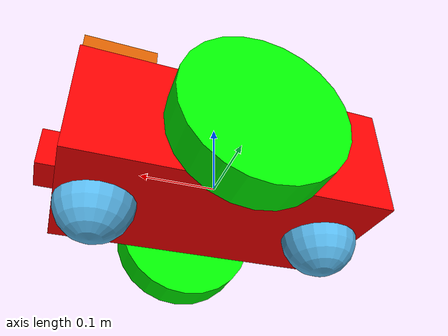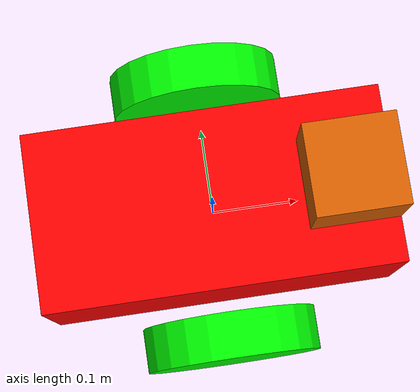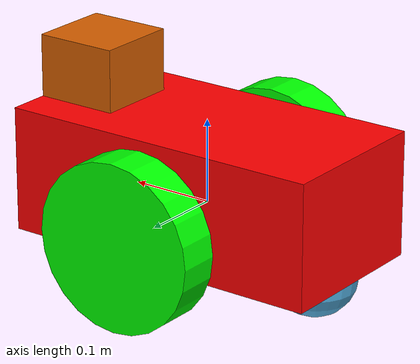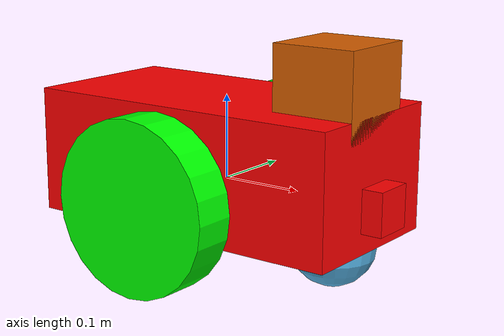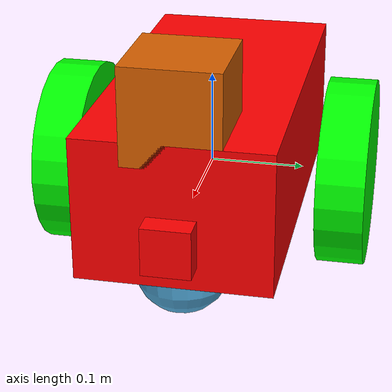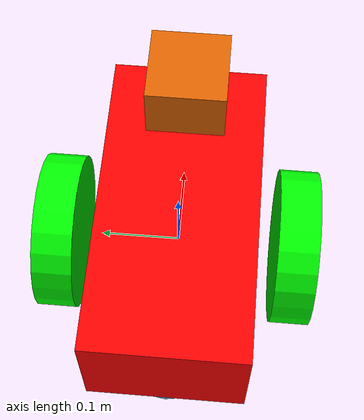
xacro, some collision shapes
<?xml version='1.0'?>

<robot name="udacity_bot" xmlns:xacro="http://www.ros.org/wiki/xacro">

  <xacro:include filename="$(find udacity_bot)/urdf/my_bot.gazebo" />

  <material name="red">
    <color rgba="1.0 0.0 0.0 1.0" />
  </material>

  <material name="green">
    <color rgba="0.0 1.0 0.0 1.0" />
  </material>

  <material name="blue">
    <color rgba="0.0 0.0 1.0 1.0" />
  </material>

  <link name="robot_footprint"></link>

  <joint name="robot_footprint_joint" type="fixed">
    <origin xyz="0 0 0" rpy="0 0 0" />
    <parent link="robot_footprint"/>
    <child link="chassis" />
  </joint>

  <link name='chassis'>
    <pose>0 0 0.1 0 0 0</pose>

    <inertial>
      <mass value="15.0"/>
      <origin xyz="0.0 0 0" rpy=" 0 0 0"/>
      <inertia
          ixx="0.1" ixy="0" ixz="0"
          iyy="0.1" iyz="0"
          izz="0.1"
      />
    </inertial>

    <collision name='collision'>
      <origin xyz="0 0 0.025" rpy=" 0 0 0"/>
      <geometry>
        <box size=".4 .2 .15"/>
      </geometry>
    </collision>

    <visual name='chassis_visual'>
      <origin xyz="0 0 0.025" rpy=" 0 0 0"/>
      <geometry>
        <box size=".4 .2 .15"/>
      </geometry>
      <material name="red" />
    </visual>

    <collision name='back_caster_collision'>
      <origin xyz="-0.15 0 -0.05" rpy=" 0 0 0"/>
      <geometry>
        <sphere radius="0.0499"/>
      </geometry>
    </collision>

    <visual name='back_caster_visual'>
      <origin xyz="-0.15 0 -0.05" rpy=" 0 0 0"/>
      <geometry>
        <sphere radius="0.05"/>
      </geometry>
    </visual>

    <collision name='front_caster_collision'>
      <origin xyz="0.15 0 -0.05" rpy=" 0 0 0"/>
      <geometry>
        <sphere radius="0.0499"/>
      </geometry>
    </collision>

    <visual name='front_caster_visual'>
      <origin xyz="0.15 0 -0.05" rpy=" 0 0 0"/>
      <geometry>
        <sphere radius="0.05"/>
      </geometry>
    </visual>

  </link>

  <!-- LEFT WHEEL -->
  <joint type="continuous" name="left_wheel_hinge">
    <origin xyz="0 0.15 0" rpy="0 0 0"/>
    <child link="left_wheel"/>
    <parent link="chassis"/>
    <axis xyz="0 1 0" rpy="0 0 0"/>
    <limit effort="10000" velocity="1000"/>
    <dynamics damping="1.0" friction="1.0"/>
  </joint>

  <link name='left_wheel'>
    <pose>0 0 0 0 1.5707 1.5707</pose>
    <inertial>
      <mass value="5.0"/>
      <origin xyz="0 0 0" rpy="0 1.5707 1.5707" />
      <inertia
          ixx="0.1" ixy="0" ixz="0"
          iyy="0.1" iyz="0"
          izz="0.1"
      />
    </inertial>

    <collision>
      <origin xyz="0 0 0" rpy="0 1.5707 1.5707" />
      <geometry>
        <cylinder radius="0.1" length="0.05" />
      </geometry>
    </collision>

    <visual>
      <origin xyz="0 0 0" rpy="0 1.5707 1.5707" />
      <geometry>
        <cylinder radius="0.1" length="0.05" />
      </geometry>
      <material name="green" />
    </visual>
  </link>

  <!-- RIGHT WHEEL -->
  <joint type="continuous" name="right_wheel_hinge">
    <origin xyz="0 -0.15 0" rpy="0 0 0"/>
    <child link="right_wheel"/>
    <parent link="chassis"/>
    <axis xyz="0 1 0" rpy="0 0 0"/>
    <limit effort="10000" velocity="1000"/>
    <dynamics damping="1.0" friction="1.0"/>
  </joint>

  <link name='right_wheel'>
    <pose>0 0 0 0 1.5707 1.5707</pose>
    <inertial>
      <mass value="5.0"/>
      <origin xyz="0 0 0" rpy="0 1.5707 1.5707" />
      <inertia
          ixx="0.1" ixy="0" ixz="0"
          iyy="0.1" iyz="0"
          izz="0.1"
      />
    </inertial>

    <collision>
      <origin xyz="0 0 0" rpy="0 1.5707 1.5707" />
      <geometry>
        <cylinder radius="0.1" length="0.05" />
      </geometry>
    </collision>

    <visual>
      <origin xyz="0 0 0" rpy="0 1.5707 1.5707" />
      <geometry>
        <cylinder radius="0.1" length="0.05" />
      </geometry>
      <material name="green" />
    </visual>
  </link>

  <!-- CAMERA -->
  <joint name="camera_joint" type="fixed">
    <origin xyz="0.2 0 0" rpy="0 0 0" />
    <parent link="chassis" />
    <child link="camera" />
  </joint>

  <link name='camera'>
    <pose>0 0 0 0 0 0</pose>
    <inertial>
      <mass value="0.1"/>
      <origin xyz="0 0 0" rpy="0 0 0" />
      <inertia
          ixx="1e-6" ixy="0" ixz="0"
          iyy="1e-6" iyz="0"
          izz="1e-6"
      />
    </inertial>

    <collision>
      <origin xyz="0 0 0" rpy=" 0 0 0" />
      <geometry>
        <box size="0.05 0.05 0.05" />
      </geometry>
    </collision>

    <visual>
      <origin xyz="0 0 0" rpy=" 0 0 0" />
      <geometry>
        <box size="0.05 0.05 0.05" />
      </geometry>
      <material name="red" />
    </visual>
  </link>

  <!-- LASER RANGEFINDER -->
  <joint name="hokuyo_joint" type="fixed">
    <origin xyz="0.15 0 0.125" rpy="0 0 0" />
    <parent link="chassis" />
    <child link="hokuyo" />
  </joint>

  <link name='hokuyo'>
    <pose>0 0 0 0 0 0</pose>
    <inertial>
      <mass value="0.1"/>
      <origin xyz="0 0 0" rpy="0 0 0" />
      <inertia
          ixx="1e-6" ixy="0" ixz="0"
          iyy="1e-6" iyz="0"
          izz="1e-6"
      />
    </inertial>

    <collision>
      <origin xyz="0 0 0" rpy=" 0 0 0" />
      <geometry>
        <box size="0.1 0.1 0.1" />
      </geometry>
    </collision>

    <visual>
      <origin xyz="0 0 0" rpy=" 0 0 0" />
      <geometry>
        <mesh filename="package://udacity_bot/meshes/hokuyo.dae"/>
      </geometry>
    </visual>
  </link>

</robot>
